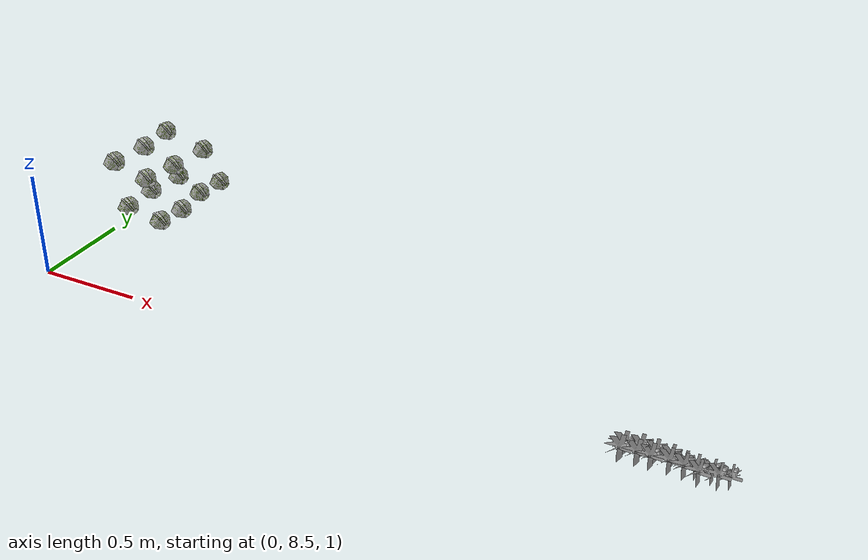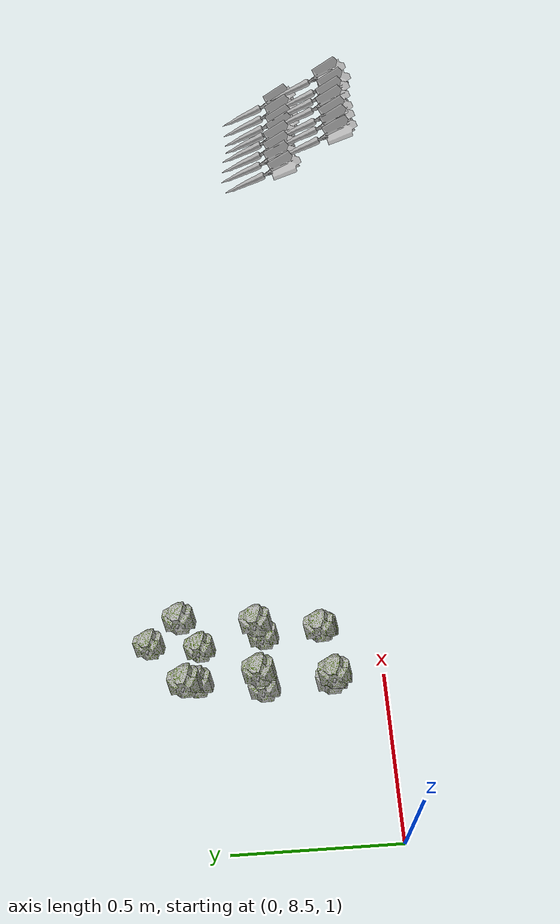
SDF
<sdf version="1.6">
 <world name="default">
  <model name="green_pepper">
   <link name="link_1">
    <inertial>
     <mass>1</mass>
     <inertia>
      <ixx>0.166667</ixx>
      <ixy>0</ixy>
      <ixz>0</ixz>
      <iyy>0.166667</iyy>
      <iyz>0</iyz>
      <izz>0.166667</izz>
     </inertia>
    </inertial>
    <visual name="visual">
     <geometry><mesh><uri>model://green_pepper/meshes/green_pepper.dae</uri><scale>1 1 1</scale></mesh></geometry>
    </visual>
    <collision name="collision">
     <geometry><mesh><uri>model://green_pepper/meshes/green_pepper.dae</uri><scale>1 1 1</scale></mesh></geometry>
     <surface>
      <friction>
       <ode><mu>1</mu><mu2>1</mu2><fdir1>0 0 0</fdir1><slip1>0</slip1><slip2>0</slip2></ode>
       <torsional>
        <coefficient>1</coefficient>
        <patch_radius>0</patch_radius>
        <surface_radius>0</surface_radius>
        <use_patch_radius>1</use_patch_radius>
        <ode><slip>0</slip></ode>
       </torsional>
      </friction>
      <bounce><restitution_coefficient>0</restitution_coefficient><threshold>1e+06</threshold></bounce>
      <contact>
       <collide_without_contact>0</collide_without_contact>
       <collide_without_contact_bitmask>1</collide_without_contact_bitmask>
       <collide_bitmask>1</collide_bitmask>
       <ode>
        <soft_cfm>0</soft_cfm>
        <soft_erp>0.2</soft_erp>
        <kp>1e+13</kp>
        <kd>1</kd>
        <max_vel>0.01</max_vel>
        <min_depth>0</min_depth>
       </ode>
       <bullet>
        <split_impulse>1</split_impulse>
        <split_impulse_penetration_threshold>-0.01</split_impulse_penetration_threshold>
        <soft_cfm>0</soft_cfm>
        <soft_erp>0.2</soft_erp>
        <kp>1e+13</kp>
        <kd>1</kd>
       </bullet>
      </contact>
     </surface>
    </collision>
   </link>
   <static>1</static>
   <pose>0.319036 8.70387 1.55895 0.445743 -0 1.72802</pose>
  </model>
  <model name="green_pepper_clone">
   <link name="link_1">
    <inertial>
     <mass>1</mass>
     <inertia>
      <ixx>0.166667</ixx>
      <ixy>0</ixy>
      <ixz>0</ixz>
      <iyy>0.166667</iyy>
      <iyz>0</iyz>
      <izz>0.166667</izz>
     </inertia>
    </inertial>
    <visual name="visual">
     <geometry><mesh><uri>model://green_pepper/meshes/green_pepper.dae</uri><scale>1 1 1</scale></mesh></geometry>
    </visual>
    <collision name="collision">
     <geometry><mesh><uri>model://green_pepper/meshes/green_pepper.dae</uri><scale>1 1 1</scale></mesh></geometry>
     <surface>
      <friction>
       <ode><mu>1</mu><mu2>1</mu2><fdir1>0 0 0</fdir1><slip1>0</slip1><slip2>0</slip2></ode>
       <torsional>
        <coefficient>1</coefficient>
        <patch_radius>0</patch_radius>
        <surface_radius>0</surface_radius>
        <use_patch_radius>1</use_patch_radius>
        <ode><slip>0</slip></ode>
       </torsional>
      </friction>
      <bounce><restitution_coefficient>0</restitution_coefficient><threshold>1e+06</threshold></bounce>
      <contact>
       <collide_without_contact>0</collide_without_contact>
       <collide_without_contact_bitmask>1</collide_without_contact_bitmask>
       <collide_bitmask>1</collide_bitmask>
       <ode>
        <soft_cfm>0</soft_cfm>
        <soft_erp>0.2</soft_erp>
        <kp>1e+13</kp>
        <kd>1</kd>
        <max_vel>0.01</max_vel>
        <min_depth>0</min_depth>
       </ode>
       <bullet>
        <split_impulse>1</split_impulse>
        <split_impulse_penetration_threshold>-0.01</split_impulse_penetration_threshold>
        <soft_cfm>0</soft_cfm>
        <soft_erp>0.2</soft_erp>
        <kp>1e+13</kp>
        <kd>1</kd>
       </bullet>
      </contact>
     </surface>
    </collision>
   </link>
   <static>1</static>
   <pose>0.336095 8.90108 1.55895 0.445743 -0 1.72802</pose>
  </model>
  <model name="green_pepper_clone_0">
   <link name="link_1">
    <inertial>
     <mass>1</mass>
     <inertia>
      <ixx>0.166667</ixx>
      <ixy>0</ixy>
      <ixz>0</ixz>
      <iyy>0.166667</iyy>
      <iyz>0</iyz>
      <izz>0.166667</izz>
     </inertia>
    </inertial>
    <visual name="visual">
     <geometry><mesh><uri>model://green_pepper/meshes/green_pepper.dae</uri><scale>1 1 1</scale></mesh></geometry>
    </visual>
    <collision name="collision">
     <geometry><mesh><uri>model://green_pepper/meshes/green_pepper.dae</uri><scale>1 1 1</scale></mesh></geometry>
     <surface>
      <friction>
       <ode><mu>1</mu><mu2>1</mu2><fdir1>0 0 0</fdir1><slip1>0</slip1><slip2>0</slip2></ode>
       <torsional>
        <coefficient>1</coefficient>
        <patch_radius>0</patch_radius>
        <surface_radius>0</surface_radius>
        <use_patch_radius>1</use_patch_radius>
        <ode><slip>0</slip></ode>
       </torsional>
      </friction>
      <bounce><restitution_coefficient>0</restitution_coefficient><threshold>1e+06</threshold></bounce>
      <contact>
       <collide_without_contact>0</collide_without_contact>
       <collide_without_contact_bitmask>1</collide_without_contact_bitmask>
       <collide_bitmask>1</collide_bitmask>
       <ode>
        <soft_cfm>0</soft_cfm>
        <soft_erp>0.2</soft_erp>
        <kp>1e+13</kp>
        <kd>1</kd>
        <max_vel>0.01</max_vel>
        <min_depth>0</min_depth>
       </ode>
       <bullet>
        <split_impulse>1</split_impulse>
        <split_impulse_penetration_threshold>-0.01</split_impulse_penetration_threshold>
        <soft_cfm>0</soft_cfm>
        <soft_erp>0.2</soft_erp>
        <kp>1e+13</kp>
        <kd>1</kd>
       </bullet>
      </contact>
     </surface>
    </collision>
   </link>
   <static>1</static>
   <pose>0.319192 9.09518 1.55895 0.445743 -0 1.72802</pose>
  </model>
  <model name="green_pepper_clone_4">
   <link name="link_1">
    <inertial>
     <mass>1</mass>
     <inertia>
      <ixx>0.166667</ixx>
      <ixy>0</ixy>
      <ixz>0</ixz>
      <iyy>0.166667</iyy>
      <iyz>0</iyz>
      <izz>0.166667</izz>
     </inertia>
    </inertial>
    <visual name="visual">
     <geometry><mesh><uri>model://green_pepper/meshes/green_pepper.dae</uri><scale>1 1 1</scale></mesh></geometry>
    </visual>
    <collision name="collision">
     <geometry><mesh><uri>model://green_pepper/meshes/green_pepper.dae</uri><scale>1 1 1</scale></mesh></geometry>
     <surface>
      <friction>
       <ode><mu>1</mu><mu2>1</mu2><fdir1>0 0 0</fdir1><slip1>0</slip1><slip2>0</slip2></ode>
       <torsional>
        <coefficient>1</coefficient>
        <patch_radius>0</patch_radius>
        <surface_radius>0</surface_radius>
        <use_patch_radius>1</use_patch_radius>
        <ode><slip>0</slip></ode>
       </torsional>
      </friction>
      <bounce><restitution_coefficient>0</restitution_coefficient><threshold>1e+06</threshold></bounce>
      <contact>
       <collide_without_contact>0</collide_without_contact>
       <collide_without_contact_bitmask>1</collide_without_contact_bitmask>
       <collide_bitmask>1</collide_bitmask>
       <ode>
        <soft_cfm>0</soft_cfm>
        <soft_erp>0.2</soft_erp>
        <kp>1e+13</kp>
        <kd>1</kd>
        <max_vel>0.01</max_vel>
        <min_depth>0</min_depth>
       </ode>
       <bullet>
        <split_impulse>1</split_impulse>
        <split_impulse_penetration_threshold>-0.01</split_impulse_penetration_threshold>
        <soft_cfm>0</soft_cfm>
        <soft_erp>0.2</soft_erp>
        <kp>1e+13</kp>
        <kd>1</kd>
       </bullet>
      </contact>
     </surface>
    </collision>
   </link>
   <static>1</static>
   <pose>0.47032 8.72776 1.498 0.445743 -0 1.72802</pose>
  </model>
  <model name="green_pepper_clone_4_clone">
   <link name="link_1">
    <inertial>
     <mass>1</mass>
     <inertia>
      <ixx>0.166667</ixx>
      <ixy>0</ixy>
      <ixz>0</ixz>
      <iyy>0.166667</iyy>
      <iyz>0</iyz>
      <izz>0.166667</izz>
     </inertia>
    </inertial>
    <visual name="visual">
     <geometry><mesh><uri>model://green_pepper/meshes/green_pepper.dae</uri><scale>1 1 1</scale></mesh></geometry>
    </visual>
    <collision name="collision">
     <geometry><mesh><uri>model://green_pepper/meshes/green_pepper.dae</uri><scale>1 1 1</scale></mesh></geometry>
     <surface>
      <friction>
       <ode><mu>1</mu><mu2>1</mu2><fdir1>0 0 0</fdir1><slip1>0</slip1><slip2>0</slip2></ode>
       <torsional>
        <coefficient>1</coefficient>
        <patch_radius>0</patch_radius>
        <surface_radius>0</surface_radius>
        <use_patch_radius>1</use_patch_radius>
        <ode><slip>0</slip></ode>
       </torsional>
      </friction>
      <bounce><restitution_coefficient>0</restitution_coefficient><threshold>1e+06</threshold></bounce>
      <contact>
       <collide_without_contact>0</collide_without_contact>
       <collide_without_contact_bitmask>1</collide_without_contact_bitmask>
       <collide_bitmask>1</collide_bitmask>
       <ode>
        <soft_cfm>0</soft_cfm>
        <soft_erp>0.2</soft_erp>
        <kp>1e+13</kp>
        <kd>1</kd>
        <max_vel>0.01</max_vel>
        <min_depth>0</min_depth>
       </ode>
       <bullet>
        <split_impulse>1</split_impulse>
        <split_impulse_penetration_threshold>-0.01</split_impulse_penetration_threshold>
        <soft_cfm>0</soft_cfm>
        <soft_erp>0.2</soft_erp>
        <kp>1e+13</kp>
        <kd>1</kd>
       </bullet>
      </contact>
     </surface>
    </collision>
   </link>
   <static>1</static>
   <pose>0.496707 8.90159 1.498 0.445743 -0 1.72802</pose>
  </model>
  <model name="green_pepper_clone_4_clone_0">
   <link name="link_1">
    <inertial>
     <mass>1</mass>
     <inertia>
      <ixx>0.166667</ixx>
      <ixy>0</ixy>
      <ixz>0</ixz>
      <iyy>0.166667</iyy>
      <iyz>0</iyz>
      <izz>0.166667</izz>
     </inertia>
    </inertial>
    <visual name="visual">
     <geometry><mesh><uri>model://green_pepper/meshes/green_pepper.dae</uri><scale>1 1 1</scale></mesh></geometry>
    </visual>
    <collision name="collision">
     <geometry><mesh><uri>model://green_pepper/meshes/green_pepper.dae</uri><scale>1 1 1</scale></mesh></geometry>
     <surface>
      <friction>
       <ode><mu>1</mu><mu2>1</mu2><fdir1>0 0 0</fdir1><slip1>0</slip1><slip2>0</slip2></ode>
       <torsional>
        <coefficient>1</coefficient>
        <patch_radius>0</patch_radius>
        <surface_radius>0</surface_radius>
        <use_patch_radius>1</use_patch_radius>
        <ode><slip>0</slip></ode>
       </torsional>
      </friction>
      <bounce><restitution_coefficient>0</restitution_coefficient><threshold>1e+06</threshold></bounce>
      <contact>
       <collide_without_contact>0</collide_without_contact>
       <collide_without_contact_bitmask>1</collide_without_contact_bitmask>
       <collide_bitmask>1</collide_bitmask>
       <ode>
        <soft_cfm>0</soft_cfm>
        <soft_erp>0.2</soft_erp>
        <kp>1e+13</kp>
        <kd>1</kd>
        <max_vel>0.01</max_vel>
        <min_depth>0</min_depth>
       </ode>
       <bullet>
        <split_impulse>1</split_impulse>
        <split_impulse_penetration_threshold>-0.01</split_impulse_penetration_threshold>
        <soft_cfm>0</soft_cfm>
        <soft_erp>0.2</soft_erp>
        <kp>1e+13</kp>
        <kd>1</kd>
       </bullet>
      </contact>
     </surface>
    </collision>
   </link>
   <static>1</static>
   <pose>0.51574 9.10967 1.498 0.445743 -0 1.72802</pose>
  </model>
  <model name="green_pepper_clone_4_clone_4">
   <link name="link_1">
    <inertial>
     <mass>1</mass>
     <inertia>
      <ixx>0.166667</ixx>
      <ixy>0</ixy>
      <ixz>0</ixz>
      <iyy>0.166667</iyy>
      <iyz>0</iyz>
      <izz>0.166667</izz>
     </inertia>
    </inertial>
    <visual name="visual">
     <geometry><mesh><uri>model://green_pepper/meshes/green_pepper.dae</uri><scale>1 1 1</scale></mesh></geometry>
    </visual>
    <collision name="collision">
     <geometry><mesh><uri>model://green_pepper/meshes/green_pepper.dae</uri><scale>1 1 1</scale></mesh></geometry>
     <surface>
      <friction>
       <ode><mu>1</mu><mu2>1</mu2><fdir1>0 0 0</fdir1><slip1>0</slip1><slip2>0</slip2></ode>
       <torsional>
        <coefficient>1</coefficient>
        <patch_radius>0</patch_radius>
        <surface_radius>0</surface_radius>
        <use_patch_radius>1</use_patch_radius>
        <ode><slip>0</slip></ode>
       </torsional>
      </friction>
      <bounce><restitution_coefficient>0</restitution_coefficient><threshold>1e+06</threshold></bounce>
      <contact>
       <collide_without_contact>0</collide_without_contact>
       <collide_without_contact_bitmask>1</collide_without_contact_bitmask>
       <collide_bitmask>1</collide_bitmask>
       <ode>
        <soft_cfm>0</soft_cfm>
        <soft_erp>0.2</soft_erp>
        <kp>1e+13</kp>
        <kd>1</kd>
        <max_vel>0.01</max_vel>
        <min_depth>0</min_depth>
       </ode>
       <bullet>
        <split_impulse>1</split_impulse>
        <split_impulse_penetration_threshold>-0.01</split_impulse_penetration_threshold>
        <soft_cfm>0</soft_cfm>
        <soft_erp>0.2</soft_erp>
        <kp>1e+13</kp>
        <kd>1</kd>
       </bullet>
      </contact>
     </surface>
    </collision>
   </link>
   <static>1</static>
   <pose>0.374278 8.69791 1.34771 0.445743 -0 1.72802</pose>
  </model>
  <model name="green_pepper_clone_4_clone_4_clone">
   <link name="link_1">
    <inertial>
     <mass>1</mass>
     <inertia>
      <ixx>0.166667</ixx>
      <ixy>0</ixy>
      <ixz>0</ixz>
      <iyy>0.166667</iyy>
      <iyz>0</iyz>
      <izz>0.166667</izz>
     </inertia>
    </inertial>
    <visual name="visual">
     <geometry><mesh><uri>model://green_pepper/meshes/green_pepper.dae</uri><scale>1 1 1</scale></mesh></geometry>
    </visual>
    <collision name="collision">
     <geometry><mesh><uri>model://green_pepper/meshes/green_pepper.dae</uri><scale>1 1 1</scale></mesh></geometry>
     <surface>
      <friction>
       <ode><mu>1</mu><mu2>1</mu2><fdir1>0 0 0</fdir1><slip1>0</slip1><slip2>0</slip2></ode>
       <torsional>
        <coefficient>1</coefficient>
        <patch_radius>0</patch_radius>
        <surface_radius>0</surface_radius>
        <use_patch_radius>1</use_patch_radius>
        <ode><slip>0</slip></ode>
       </torsional>
      </friction>
      <bounce><restitution_coefficient>0</restitution_coefficient><threshold>1e+06</threshold></bounce>
      <contact>
       <collide_without_contact>0</collide_without_contact>
       <collide_without_contact_bitmask>1</collide_without_contact_bitmask>
       <collide_bitmask>1</collide_bitmask>
       <ode>
        <soft_cfm>0</soft_cfm>
        <soft_erp>0.2</soft_erp>
        <kp>1e+13</kp>
        <kd>1</kd>
        <max_vel>0.01</max_vel>
        <min_depth>0</min_depth>
       </ode>
       <bullet>
        <split_impulse>1</split_impulse>
        <split_impulse_penetration_threshold>-0.01</split_impulse_penetration_threshold>
        <soft_cfm>0</soft_cfm>
        <soft_erp>0.2</soft_erp>
        <kp>1e+13</kp>
        <kd>1</kd>
       </bullet>
      </contact>
     </surface>
    </collision>
   </link>
   <static>1</static>
   <pose>0.3634 8.88587 1.34771 0.445743 -0 1.72802</pose>
  </model>
  <model name="green_pepper_clone_4_clone_4_clone_0">
   <link name="link_1">
    <inertial>
     <mass>1</mass>
     <inertia>
      <ixx>0.166667</ixx>
      <ixy>0</ixy>
      <ixz>0</ixz>
      <iyy>0.166667</iyy>
      <iyz>0</iyz>
      <izz>0.166667</izz>
     </inertia>
    </inertial>
    <visual name="visual">
     <geometry><mesh><uri>model://green_pepper/meshes/green_pepper.dae</uri><scale>1 1 1</scale></mesh></geometry>
    </visual>
    <collision name="collision">
     <geometry><mesh><uri>model://green_pepper/meshes/green_pepper.dae</uri><scale>1 1 1</scale></mesh></geometry>
     <surface>
      <friction>
       <ode><mu>1</mu><mu2>1</mu2><fdir1>0 0 0</fdir1><slip1>0</slip1><slip2>0</slip2></ode>
       <torsional>
        <coefficient>1</coefficient>
        <patch_radius>0</patch_radius>
        <surface_radius>0</surface_radius>
        <use_patch_radius>1</use_patch_radius>
        <ode><slip>0</slip></ode>
       </torsional>
      </friction>
      <bounce><restitution_coefficient>0</restitution_coefficient><threshold>1e+06</threshold></bounce>
      <contact>
       <collide_without_contact>0</collide_without_contact>
       <collide_without_contact_bitmask>1</collide_without_contact_bitmask>
       <collide_bitmask>1</collide_bitmask>
       <ode>
        <soft_cfm>0</soft_cfm>
        <soft_erp>0.2</soft_erp>
        <kp>1e+13</kp>
        <kd>1</kd>
        <max_vel>0.01</max_vel>
        <min_depth>0</min_depth>
       </ode>
       <bullet>
        <split_impulse>1</split_impulse>
        <split_impulse_penetration_threshold>-0.01</split_impulse_penetration_threshold>
        <soft_cfm>0</soft_cfm>
        <soft_erp>0.2</soft_erp>
        <kp>1e+13</kp>
        <kd>1</kd>
       </bullet>
      </contact>
     </surface>
    </collision>
   </link>
   <static>1</static>
   <pose>0.387027 9.07084 1.34771 0.445743 -0 1.72802</pose>
  </model>
  <model name="green_pepper_clone_4_clone_4_clone_4">
   <link name="link_1">
    <inertial>
     <mass>1</mass>
     <inertia>
      <ixx>0.166667</ixx>
      <ixy>0</ixy>
      <ixz>0</ixz>
      <iyy>0.166667</iyy>
      <iyz>0</iyz>
      <izz>0.166667</izz>
     </inertia>
    </inertial>
    <visual name="visual">
     <geometry><mesh><uri>model://green_pepper/meshes/green_pepper.dae</uri><scale>1 1 1</scale></mesh></geometry>
    </visual>
    <collision name="collision">
     <geometry><mesh><uri>model://green_pepper/meshes/green_pepper.dae</uri><scale>1 1 1</scale></mesh></geometry>
     <surface>
      <friction>
       <ode><mu>1</mu><mu2>1</mu2><fdir1>0 0 0</fdir1><slip1>0</slip1><slip2>0</slip2></ode>
       <torsional>
        <coefficient>1</coefficient>
        <patch_radius>0</patch_radius>
        <surface_radius>0</surface_radius>
        <use_patch_radius>1</use_patch_radius>
        <ode><slip>0</slip></ode>
       </torsional>
      </friction>
      <bounce><restitution_coefficient>0</restitution_coefficient><threshold>1e+06</threshold></bounce>
      <contact>
       <collide_without_contact>0</collide_without_contact>
       <collide_without_contact_bitmask>1</collide_without_contact_bitmask>
       <collide_bitmask>1</collide_bitmask>
       <ode>
        <soft_cfm>0</soft_cfm>
        <soft_erp>0.2</soft_erp>
        <kp>1e+13</kp>
        <kd>1</kd>
        <max_vel>0.01</max_vel>
        <min_depth>0</min_depth>
       </ode>
       <bullet>
        <split_impulse>1</split_impulse>
        <split_impulse_penetration_threshold>-0.01</split_impulse_penetration_threshold>
        <soft_cfm>0</soft_cfm>
        <soft_erp>0.2</soft_erp>
        <kp>1e+13</kp>
        <kd>1</kd>
       </bullet>
      </contact>
     </surface>
    </collision>
   </link>
   <static>1</static>
   <pose>0.543584 8.70597 1.31139 0.445743 -0 1.72802</pose>
  </model>
  <model name="green_pepper_clone_4_clone_4_clone_4_clone">
   <link name="link_1">
    <inertial>
     <mass>1</mass>
     <inertia>
      <ixx>0.166667</ixx>
      <ixy>0</ixy>
      <ixz>0</ixz>
      <iyy>0.166667</iyy>
      <iyz>0</iyz>
      <izz>0.166667</izz>
     </inertia>
    </inertial>
    <visual name="visual">
     <geometry><mesh><uri>model://green_pepper/meshes/green_pepper.dae</uri><scale>1 1 1</scale></mesh></geometry>
    </visual>
    <collision name="collision">
     <geometry><mesh><uri>model://green_pepper/meshes/green_pepper.dae</uri><scale>1 1 1</scale></mesh></geometry>
     <surface>
      <friction>
       <ode><mu>1</mu><mu2>1</mu2><fdir1>0 0 0</fdir1><slip1>0</slip1><slip2>0</slip2></ode>
       <torsional>
        <coefficient>1</coefficient>
        <patch_radius>0</patch_radius>
        <surface_radius>0</surface_radius>
        <use_patch_radius>1</use_patch_radius>
        <ode><slip>0</slip></ode>
       </torsional>
      </friction>
      <bounce><restitution_coefficient>0</restitution_coefficient><threshold>1e+06</threshold></bounce>
      <contact>
       <collide_without_contact>0</collide_without_contact>
       <collide_without_contact_bitmask>1</collide_without_contact_bitmask>
       <collide_bitmask>1</collide_bitmask>
       <ode>
        <soft_cfm>0</soft_cfm>
        <soft_erp>0.2</soft_erp>
        <kp>1e+13</kp>
        <kd>1</kd>
        <max_vel>0.01</max_vel>
        <min_depth>0</min_depth>
       </ode>
       <bullet>
        <split_impulse>1</split_impulse>
        <split_impulse_penetration_threshold>-0.01</split_impulse_penetration_threshold>
        <soft_cfm>0</soft_cfm>
        <soft_erp>0.2</soft_erp>
        <kp>1e+13</kp>
        <kd>1</kd>
       </bullet>
      </contact>
     </surface>
    </collision>
   </link>
   <static>1</static>
   <pose>0.536013 8.87889 1.29005 0.445743 -0 1.72802</pose>
  </model>
  <model name="green_pepper_clone_4_clone_4_clone_4_clone_0">
   <link name="link_1">
    <inertial>
     <mass>1</mass>
     <inertia>
      <ixx>0.166667</ixx>
      <ixy>0</ixy>
      <ixz>0</ixz>
      <iyy>0.166667</iyy>
      <iyz>0</iyz>
      <izz>0.166667</izz>
     </inertia>
    </inertial>
    <visual name="visual">
     <geometry><mesh><uri>model://green_pepper/meshes/green_pepper.dae</uri><scale>1 1 1</scale></mesh></geometry>
    </visual>
    <collision name="collision">
     <geometry><mesh><uri>model://green_pepper/meshes/green_pepper.dae</uri><scale>1 1 1</scale></mesh></geometry>
     <surface>
      <friction>
       <ode><mu>1</mu><mu2>1</mu2><fdir1>0 0 0</fdir1><slip1>0</slip1><slip2>0</slip2></ode>
       <torsional>
        <coefficient>1</coefficient>
        <patch_radius>0</patch_radius>
        <surface_radius>0</surface_radius>
        <use_patch_radius>1</use_patch_radius>
        <ode><slip>0</slip></ode>
       </torsional>
      </friction>
      <bounce><restitution_coefficient>0</restitution_coefficient><threshold>1e+06</threshold></bounce>
      <contact>
       <collide_without_contact>0</collide_without_contact>
       <collide_without_contact_bitmask>1</collide_without_contact_bitmask>
       <collide_bitmask>1</collide_bitmask>
       <ode>
        <soft_cfm>0</soft_cfm>
        <soft_erp>0.2</soft_erp>
        <kp>1e+13</kp>
        <kd>1</kd>
        <max_vel>0.01</max_vel>
        <min_depth>0</min_depth>
       </ode>
       <bullet>
        <split_impulse>1</split_impulse>
        <split_impulse_penetration_threshold>-0.01</split_impulse_penetration_threshold>
        <soft_cfm>0</soft_cfm>
        <soft_erp>0.2</soft_erp>
        <kp>1e+13</kp>
        <kd>1</kd>
       </bullet>
      </contact>
     </surface>
    </collision>
   </link>
   <static>1</static>
   <pose>0.509729 9.06373 1.29005 0.445743 -0 1.72802</pose>
  </model>
  <model name="green_pepper_clone_4_clone_4_clone_4_clone_1">
   <link name="link_1">
    <inertial>
     <mass>1</mass>
     <inertia>
      <ixx>0.166667</ixx>
      <ixy>0</ixy>
      <ixz>0</ixz>
      <iyy>0.166667</iyy>
      <iyz>0</iyz>
      <izz>0.166667</izz>
     </inertia>
    </inertial>
    <visual name="visual">
     <geometry><mesh><uri>model://green_pepper/meshes/green_pepper.dae</uri><scale>1 1 1</scale></mesh></geometry>
    </visual>
    <collision name="collision">
     <geometry><mesh><uri>model://green_pepper/meshes/green_pepper.dae</uri><scale>1 1 1</scale></mesh></geometry>
     <surface>
      <friction>
       <ode><mu>1</mu><mu2>1</mu2><fdir1>0 0 0</fdir1><slip1>0</slip1><slip2>0</slip2></ode>
       <torsional>
        <coefficient>1</coefficient>
        <patch_radius>0</patch_radius>
        <surface_radius>0</surface_radius>
        <use_patch_radius>1</use_patch_radius>
        <ode><slip>0</slip></ode>
       </torsional>
      </friction>
      <bounce><restitution_coefficient>0</restitution_coefficient><threshold>1e+06</threshold></bounce>
      <contact>
       <collide_without_contact>0</collide_without_contact>
       <collide_without_contact_bitmask>1</collide_without_contact_bitmask>
       <collide_bitmask>1</collide_bitmask>
       <ode>
        <soft_cfm>0</soft_cfm>
        <soft_erp>0.2</soft_erp>
        <kp>1e+13</kp>
        <kd>1</kd>
        <max_vel>0.01</max_vel>
        <min_depth>0</min_depth>
       </ode>
       <bullet>
        <split_impulse>1</split_impulse>
        <split_impulse_penetration_threshold>-0.01</split_impulse_penetration_threshold>
        <soft_cfm>0</soft_cfm>
        <soft_erp>0.2</soft_erp>
        <kp>1e+13</kp>
        <kd>1</kd>
       </bullet>
      </contact>
     </surface>
    </collision>
   </link>
   <static>1</static>
   <pose>0.526547 9.20906 1.29005 0.445743 -0 1.72802</pose>
  </model>
  <model name="carrot">
   <link name="link_0">
    <inertial>
     <mass>1</mass>
     <inertia>
      <ixx>0.166667</ixx>
      <ixy>0</ixy>
      <ixz>0</ixz>
      <iyy>0.166667</iyy>
      <iyz>0</iyz>
      <izz>0.166667</izz>
     </inertia>
    </inertial>
    <visual name="visual">
     <geometry><mesh><uri>model://carrot/meshes/carrot.dae</uri><scale>1 1 1</scale></mesh></geometry>
    </visual>
    <collision name="collision">
     <geometry><mesh><uri>model://carrot/meshes/carrot.dae</uri><scale>1 1 1</scale></mesh></geometry>
     <surface>
      <friction>
       <ode><mu>1</mu><mu2>1</mu2><fdir1>0 0 0</fdir1><slip1>0</slip1><slip2>0</slip2></ode>
       <torsional>
        <coefficient>1</coefficient>
        <patch_radius>0</patch_radius>
        <surface_radius>0</surface_radius>
        <use_patch_radius>1</use_patch_radius>
        <ode><slip>0</slip></ode>
       </torsional>
      </friction>
      <bounce><restitution_coefficient>0</restitution_coefficient><threshold>1e+06</threshold></bounce>
      <contact>
       <collide_without_contact>0</collide_without_contact>
       <collide_without_contact_bitmask>1</collide_without_contact_bitmask>
       <collide_bitmask>1</collide_bitmask>
       <ode>
        <soft_cfm>0</soft_cfm>
        <soft_erp>0.2</soft_erp>
        <kp>1e+13</kp>
        <kd>1</kd>
        <max_vel>0.01</max_vel>
        <min_depth>0</min_depth>
       </ode>
       <bullet>
        <split_impulse>1</split_impulse>
        <split_impulse_penetration_threshold>-0.01</split_impulse_penetration_threshold>
        <soft_cfm>0</soft_cfm>
        <soft_erp>0.2</soft_erp>
        <kp>1e+13</kp>
        <kd>1</kd>
       </bullet>
      </contact>
     </surface>
    </collision>
   </link>
   <static>1</static>
   <pose>3.20089 8.89904 0.750959 1.00813 -0 0</pose>
  </model>
  <model name="carrot_clone">
   <link name="link_0">
    <inertial>
     <mass>1</mass>
     <inertia>
      <ixx>0.166667</ixx>
      <ixy>0</ixy>
      <ixz>0</ixz>
      <iyy>0.166667</iyy>
      <iyz>0</iyz>
      <izz>0.166667</izz>
     </inertia>
    </inertial>
    <visual name="visual">
     <geometry><mesh><uri>model://carrot/meshes/carrot.dae</uri><scale>1 1 1</scale></mesh></geometry>
    </visual>
    <collision name="collision">
     <geometry><mesh><uri>model://carrot/meshes/carrot.dae</uri><scale>1 1 1</scale></mesh></geometry>
     <surface>
      <friction>
       <ode><mu>1</mu><mu2>1</mu2><fdir1>0 0 0</fdir1><slip1>0</slip1><slip2>0</slip2></ode>
       <torsional>
        <coefficient>1</coefficient>
        <patch_radius>0</patch_radius>
        <surface_radius>0</surface_radius>
        <use_patch_radius>1</use_patch_radius>
        <ode><slip>0</slip></ode>
       </torsional>
      </friction>
      <bounce><restitution_coefficient>0</restitution_coefficient><threshold>1e+06</threshold></bounce>
      <contact>
       <collide_without_contact>0</collide_without_contact>
       <collide_without_contact_bitmask>1</collide_without_contact_bitmask>
       <collide_bitmask>1</collide_bitmask>
       <ode>
        <soft_cfm>0</soft_cfm>
        <soft_erp>0.2</soft_erp>
        <kp>1e+13</kp>
        <kd>1</kd>
        <max_vel>0.01</max_vel>
        <min_depth>0</min_depth>
       </ode>
       <bullet>
        <split_impulse>1</split_impulse>
        <split_impulse_penetration_threshold>-0.01</split_impulse_penetration_threshold>
        <soft_cfm>0</soft_cfm>
        <soft_erp>0.2</soft_erp>
        <kp>1e+13</kp>
        <kd>1</kd>
       </bullet>
      </contact>
     </surface>
    </collision>
   </link>
   <static>1</static>
   <pose>3.13308 8.89787 0.750959 1.00813 -0 0</pose>
  </model>
  <model name="carrot_clone_0">
   <link name="link_0">
    <inertial>
     <mass>1</mass>
     <inertia>
      <ixx>0.166667</ixx>
      <ixy>0</ixy>
      <ixz>0</ixz>
      <iyy>0.166667</iyy>
      <iyz>0</iyz>
      <izz>0.166667</izz>
     </inertia>
    </inertial>
    <visual name="visual">
     <geometry><mesh><uri>model://carrot/meshes/carrot.dae</uri><scale>1 1 1</scale></mesh></geometry>
    </visual>
    <collision name="collision">
     <geometry><mesh><uri>model://carrot/meshes/carrot.dae</uri><scale>1 1 1</scale></mesh></geometry>
     <surface>
      <friction>
       <ode><mu>1</mu><mu2>1</mu2><fdir1>0 0 0</fdir1><slip1>0</slip1><slip2>0</slip2></ode>
       <torsional>
        <coefficient>1</coefficient>
        <patch_radius>0</patch_radius>
        <surface_radius>0</surface_radius>
        <use_patch_radius>1</use_patch_radius>
        <ode><slip>0</slip></ode>
       </torsional>
      </friction>
      <bounce><restitution_coefficient>0</restitution_coefficient><threshold>1e+06</threshold></bounce>
      <contact>
       <collide_without_contact>0</collide_without_contact>
       <collide_without_contact_bitmask>1</collide_without_contact_bitmask>
       <collide_bitmask>1</collide_bitmask>
       <ode>
        <soft_cfm>0</soft_cfm>
        <soft_erp>0.2</soft_erp>
        <kp>1e+13</kp>
        <kd>1</kd>
        <max_vel>0.01</max_vel>
        <min_depth>0</min_depth>
       </ode>
       <bullet>
        <split_impulse>1</split_impulse>
        <split_impulse_penetration_threshold>-0.01</split_impulse_penetration_threshold>
        <soft_cfm>0</soft_cfm>
        <soft_erp>0.2</soft_erp>
        <kp>1e+13</kp>
        <kd>1</kd>
       </bullet>
      </contact>
     </surface>
    </collision>
   </link>
   <static>1</static>
   <pose>3.07071 8.89743 0.750959 1.00813 -0 0</pose>
  </model>
  <model name="carrot_clone_1">
   <link name="link_0">
    <inertial>
     <mass>1</mass>
     <inertia>
      <ixx>0.166667</ixx>
      <ixy>0</ixy>
      <ixz>0</ixz>
      <iyy>0.166667</iyy>
      <iyz>0</iyz>
      <izz>0.166667</izz>
     </inertia>
    </inertial>
    <visual name="visual">
     <geometry><mesh><uri>model://carrot/meshes/carrot.dae</uri><scale>1 1 1</scale></mesh></geometry>
    </visual>
    <collision name="collision">
     <geometry><mesh><uri>model://carrot/meshes/carrot.dae</uri><scale>1 1 1</scale></mesh></geometry>
     <surface>
      <friction>
       <ode><mu>1</mu><mu2>1</mu2><fdir1>0 0 0</fdir1><slip1>0</slip1><slip2>0</slip2></ode>
       <torsional>
        <coefficient>1</coefficient>
        <patch_radius>0</patch_radius>
        <surface_radius>0</surface_radius>
        <use_patch_radius>1</use_patch_radius>
        <ode><slip>0</slip></ode>
       </torsional>
      </friction>
      <bounce><restitution_coefficient>0</restitution_coefficient><threshold>1e+06</threshold></bounce>
      <contact>
       <collide_without_contact>0</collide_without_contact>
       <collide_without_contact_bitmask>1</collide_without_contact_bitmask>
       <collide_bitmask>1</collide_bitmask>
       <ode>
        <soft_cfm>0</soft_cfm>
        <soft_erp>0.2</soft_erp>
        <kp>1e+13</kp>
        <kd>1</kd>
        <max_vel>0.01</max_vel>
        <min_depth>0</min_depth>
       </ode>
       <bullet>
        <split_impulse>1</split_impulse>
        <split_impulse_penetration_threshold>-0.01</split_impulse_penetration_threshold>
        <soft_cfm>0</soft_cfm>
        <soft_erp>0.2</soft_erp>
        <kp>1e+13</kp>
        <kd>1</kd>
       </bullet>
      </contact>
     </surface>
    </collision>
   </link>
   <static>1</static>
   <pose>3.02529 8.89692 0.750959 1.00813 -0 0</pose>
  </model>
  <model name="carrot_clone_2">
   <link name="link_0">
    <inertial>
     <mass>1</mass>
     <inertia>
      <ixx>0.166667</ixx>
      <ixy>0</ixy>
      <ixz>0</ixz>
      <iyy>0.166667</iyy>
      <iyz>0</iyz>
      <izz>0.166667</izz>
     </inertia>
    </inertial>
    <visual name="visual">
     <geometry><mesh><uri>model://carrot/meshes/carrot.dae</uri><scale>1 1 1</scale></mesh></geometry>
    </visual>
    <collision name="collision">
     <geometry><mesh><uri>model://carrot/meshes/carrot.dae</uri><scale>1 1 1</scale></mesh></geometry>
     <surface>
      <friction>
       <ode><mu>1</mu><mu2>1</mu2><fdir1>0 0 0</fdir1><slip1>0</slip1><slip2>0</slip2></ode>
       <torsional>
        <coefficient>1</coefficient>
        <patch_radius>0</patch_radius>
        <surface_radius>0</surface_radius>
        <use_patch_radius>1</use_patch_radius>
        <ode><slip>0</slip></ode>
       </torsional>
      </friction>
      <bounce><restitution_coefficient>0</restitution_coefficient><threshold>1e+06</threshold></bounce>
      <contact>
       <collide_without_contact>0</collide_without_contact>
       <collide_without_contact_bitmask>1</collide_without_contact_bitmask>
       <collide_bitmask>1</collide_bitmask>
       <ode>
        <soft_cfm>0</soft_cfm>
        <soft_erp>0.2</soft_erp>
        <kp>1e+13</kp>
        <kd>1</kd>
        <max_vel>0.01</max_vel>
        <min_depth>0</min_depth>
       </ode>
       <bullet>
        <split_impulse>1</split_impulse>
        <split_impulse_penetration_threshold>-0.01</split_impulse_penetration_threshold>
        <soft_cfm>0</soft_cfm>
        <soft_erp>0.2</soft_erp>
        <kp>1e+13</kp>
        <kd>1</kd>
       </bullet>
      </contact>
     </surface>
    </collision>
   </link>
   <static>1</static>
   <pose>2.9701 8.91221 0.750959 1.00813 -0 0</pose>
  </model>
  <model name="carrot_clone_3">
   <link name="link_0">
    <inertial>
     <mass>1</mass>
     <inertia>
      <ixx>0.166667</ixx>
      <ixy>0</ixy>
      <ixz>0</ixz>
      <iyy>0.166667</iyy>
      <iyz>0</iyz>
      <izz>0.166667</izz>
     </inertia>
    </inertial>
    <visual name="visual">
     <geometry><mesh><uri>model://carrot/meshes/carrot.dae</uri><scale>1 1 1</scale></mesh></geometry>
    </visual>
    <collision name="collision">
     <geometry><mesh><uri>model://carrot/meshes/carrot.dae</uri><scale>1 1 1</scale></mesh></geometry>
     <surface>
      <friction>
       <ode><mu>1</mu><mu2>1</mu2><fdir1>0 0 0</fdir1><slip1>0</slip1><slip2>0</slip2></ode>
       <torsional>
        <coefficient>1</coefficient>
        <patch_radius>0</patch_radius>
        <surface_radius>0</surface_radius>
        <use_patch_radius>1</use_patch_radius>
        <ode><slip>0</slip></ode>
       </torsional>
      </friction>
      <bounce><restitution_coefficient>0</restitution_coefficient><threshold>1e+06</threshold></bounce>
      <contact>
       <collide_without_contact>0</collide_without_contact>
       <collide_without_contact_bitmask>1</collide_without_contact_bitmask>
       <collide_bitmask>1</collide_bitmask>
       <ode>
        <soft_cfm>0</soft_cfm>
        <soft_erp>0.2</soft_erp>
        <kp>1e+13</kp>
        <kd>1</kd>
        <max_vel>0.01</max_vel>
        <min_depth>0</min_depth>
       </ode>
       <bullet>
        <split_impulse>1</split_impulse>
        <split_impulse_penetration_threshold>-0.01</split_impulse_penetration_threshold>
        <soft_cfm>0</soft_cfm>
        <soft_erp>0.2</soft_erp>
        <kp>1e+13</kp>
        <kd>1</kd>
       </bullet>
      </contact>
     </surface>
    </collision>
   </link>
   <static>1</static>
   <pose>2.90706 8.91709 0.750959 1.00813 -0 0</pose>
  </model>
  <model name="carrot_clone_4">
   <link name="link_0">
    <inertial>
     <mass>1</mass>
     <inertia>
      <ixx>0.166667</ixx>
      <ixy>0</ixy>
      <ixz>0</ixz>
      <iyy>0.166667</iyy>
      <iyz>0</iyz>
      <izz>0.166667</izz>
     </inertia>
    </inertial>
    <visual name="visual">
     <geometry><mesh><uri>model://carrot/meshes/carrot.dae</uri><scale>1 1 1</scale></mesh></geometry>
    </visual>
    <collision name="collision">
     <geometry><mesh><uri>model://carrot/meshes/carrot.dae</uri><scale>1 1 1</scale></mesh></geometry>
     <surface>
      <friction>
       <ode><mu>1</mu><mu2>1</mu2><fdir1>0 0 0</fdir1><slip1>0</slip1><slip2>0</slip2></ode>
       <torsional>
        <coefficient>1</coefficient>
        <patch_radius>0</patch_radius>
        <surface_radius>0</surface_radius>
        <use_patch_radius>1</use_patch_radius>
        <ode><slip>0</slip></ode>
       </torsional>
      </friction>
      <bounce><restitution_coefficient>0</restitution_coefficient><threshold>1e+06</threshold></bounce>
      <contact>
       <collide_without_contact>0</collide_without_contact>
       <collide_without_contact_bitmask>1</collide_without_contact_bitmask>
       <collide_bitmask>1</collide_bitmask>
       <ode>
        <soft_cfm>0</soft_cfm>
        <soft_erp>0.2</soft_erp>
        <kp>1e+13</kp>
        <kd>1</kd>
        <max_vel>0.01</max_vel>
        <min_depth>0</min_depth>
       </ode>
       <bullet>
        <split_impulse>1</split_impulse>
        <split_impulse_penetration_threshold>-0.01</split_impulse_penetration_threshold>
        <soft_cfm>0</soft_cfm>
        <soft_erp>0.2</soft_erp>
        <kp>1e+13</kp>
        <kd>1</kd>
       </bullet>
      </contact>
     </surface>
    </collision>
   </link>
   <static>1</static>
   <pose>2.84731 8.92006 0.750959 1.00813 -0 0</pose>
  </model>
  <model name="carrot_clone_5">
   <link name="link_0">
    <inertial>
     <mass>1</mass>
     <inertia>
      <ixx>0.166667</ixx>
      <ixy>0</ixy>
      <ixz>0</ixz>
      <iyy>0.166667</iyy>
      <iyz>0</iyz>
      <izz>0.166667</izz>
     </inertia>
    </inertial>
    <visual name="visual">
     <geometry><mesh><uri>model://carrot/meshes/carrot.dae</uri><scale>1 1 1</scale></mesh></geometry>
    </visual>
    <collision name="collision">
     <geometry><mesh><uri>model://carrot/meshes/carrot.dae</uri><scale>1 1 1</scale></mesh></geometry>
     <surface>
      <friction>
       <ode><mu>1</mu><mu2>1</mu2><fdir1>0 0 0</fdir1><slip1>0</slip1><slip2>0</slip2></ode>
       <torsional>
        <coefficient>1</coefficient>
        <patch_radius>0</patch_radius>
        <surface_radius>0</surface_radius>
        <use_patch_radius>1</use_patch_radius>
        <ode><slip>0</slip></ode>
       </torsional>
      </friction>
      <bounce><restitution_coefficient>0</restitution_coefficient><threshold>1e+06</threshold></bounce>
      <contact>
       <collide_without_contact>0</collide_without_contact>
       <collide_without_contact_bitmask>1</collide_without_contact_bitmask>
       <collide_bitmask>1</collide_bitmask>
       <ode>
        <soft_cfm>0</soft_cfm>
        <soft_erp>0.2</soft_erp>
        <kp>1e+13</kp>
        <kd>1</kd>
        <max_vel>0.01</max_vel>
        <min_depth>0</min_depth>
       </ode>
       <bullet>
        <split_impulse>1</split_impulse>
        <split_impulse_penetration_threshold>-0.01</split_impulse_penetration_threshold>
        <soft_cfm>0</soft_cfm>
        <soft_erp>0.2</soft_erp>
        <kp>1e+13</kp>
        <kd>1</kd>
       </bullet>
      </contact>
     </surface>
    </collision>
   </link>
   <static>1</static>
   <pose>2.78367 8.90713 0.750959 1.00813 -0 0</pose>
  </model>
  <model name="carrot_clone_6_clone">
   <link name="link_0">
    <inertial>
     <mass>1</mass>
     <inertia>
      <ixx>0.166667</ixx>
      <ixy>0</ixy>
      <ixz>0</ixz>
      <iyy>0.166667</iyy>
      <iyz>0</iyz>
      <izz>0.166667</izz>
     </inertia>
    </inertial>
    <visual name="visual">
     <geometry><mesh><uri>model://carrot/meshes/carrot.dae</uri><scale>1 1 1</scale></mesh></geometry>
    </visual>
    <collision name="collision">
     <geometry><mesh><uri>model://carrot/meshes/carrot.dae</uri><scale>1 1 1</scale></mesh></geometry>
     <surface>
      <friction>
       <ode><mu>1</mu><mu2>1</mu2><fdir1>0 0 0</fdir1><slip1>0</slip1><slip2>0</slip2></ode>
       <torsional>
        <coefficient>1</coefficient>
        <patch_radius>0</patch_radius>
        <surface_radius>0</surface_radius>
        <use_patch_radius>1</use_patch_radius>
        <ode><slip>0</slip></ode>
       </torsional>
      </friction>
      <bounce><restitution_coefficient>0</restitution_coefficient><threshold>1e+06</threshold></bounce>
      <contact>
       <collide_without_contact>0</collide_without_contact>
       <collide_without_contact_bitmask>1</collide_without_contact_bitmask>
       <collide_bitmask>1</collide_bitmask>
       <ode>
        <soft_cfm>0</soft_cfm>
        <soft_erp>0.2</soft_erp>
        <kp>1e+13</kp>
        <kd>1</kd>
        <max_vel>0.01</max_vel>
        <min_depth>0</min_depth>
       </ode>
       <bullet>
        <split_impulse>1</split_impulse>
        <split_impulse_penetration_threshold>-0.01</split_impulse_penetration_threshold>
        <soft_cfm>0</soft_cfm>
        <soft_erp>0.2</soft_erp>
        <kp>1e+13</kp>
        <kd>1</kd>
       </bullet>
      </contact>
     </surface>
    </collision>
   </link>
   <static>1</static>
   <pose>2.8205 8.67267 0.910543 1.00813 -0 0</pose>
  </model>
  <model name="carrot_clone_6_clone_0">
   <link name="link_0">
    <inertial>
     <mass>1</mass>
     <inertia>
      <ixx>0.166667</ixx>
      <ixy>0</ixy>
      <ixz>0</ixz>
      <iyy>0.166667</iyy>
      <iyz>0</iyz>
      <izz>0.166667</izz>
     </inertia>
    </inertial>
    <visual name="visual">
     <geometry><mesh><uri>model://carrot/meshes/carrot.dae</uri><scale>1 1 1</scale></mesh></geometry>
    </visual>
    <collision name="collision">
     <geometry><mesh><uri>model://carrot/meshes/carrot.dae</uri><scale>1 1 1</scale></mesh></geometry>
     <surface>
      <friction>
       <ode><mu>1</mu><mu2>1</mu2><fdir1>0 0 0</fdir1><slip1>0</slip1><slip2>0</slip2></ode>
       <torsional>
        <coefficient>1</coefficient>
        <patch_radius>0</patch_radius>
        <surface_radius>0</surface_radius>
        <use_patch_radius>1</use_patch_radius>
        <ode><slip>0</slip></ode>
       </torsional>
      </friction>
      <bounce><restitution_coefficient>0</restitution_coefficient><threshold>1e+06</threshold></bounce>
      <contact>
       <collide_without_contact>0</collide_without_contact>
       <collide_without_contact_bitmask>1</collide_without_contact_bitmask>
       <collide_bitmask>1</collide_bitmask>
       <ode>
        <soft_cfm>0</soft_cfm>
        <soft_erp>0.2</soft_erp>
        <kp>1e+13</kp>
        <kd>1</kd>
        <max_vel>0.01</max_vel>
        <min_depth>0</min_depth>
       </ode>
       <bullet>
        <split_impulse>1</split_impulse>
        <split_impulse_penetration_threshold>-0.01</split_impulse_penetration_threshold>
        <soft_cfm>0</soft_cfm>
        <soft_erp>0.2</soft_erp>
        <kp>1e+13</kp>
        <kd>1</kd>
       </bullet>
      </contact>
     </surface>
    </collision>
   </link>
   <static>1</static>
   <pose>2.8839 8.67626 0.910543 1.00813 -0 0</pose>
  </model>
  <model name="carrot_clone_6_clone_1">
   <link name="link_0">
    <inertial>
     <mass>1</mass>
     <inertia>
      <ixx>0.166667</ixx>
      <ixy>0</ixy>
      <ixz>0</ixz>
      <iyy>0.166667</iyy>
      <iyz>0</iyz>
      <izz>0.166667</izz>
     </inertia>
    </inertial>
    <visual name="visual">
     <geometry><mesh><uri>model://carrot/meshes/carrot.dae</uri><scale>1 1 1</scale></mesh></geometry>
    </visual>
    <collision name="collision">
     <geometry><mesh><uri>model://carrot/meshes/carrot.dae</uri><scale>1 1 1</scale></mesh></geometry>
     <surface>
      <friction>
       <ode><mu>1</mu><mu2>1</mu2><fdir1>0 0 0</fdir1><slip1>0</slip1><slip2>0</slip2></ode>
       <torsional>
        <coefficient>1</coefficient>
        <patch_radius>0</patch_radius>
        <surface_radius>0</surface_radius>
        <use_patch_radius>1</use_patch_radius>
        <ode><slip>0</slip></ode>
       </torsional>
      </friction>
      <bounce><restitution_coefficient>0</restitution_coefficient><threshold>1e+06</threshold></bounce>
      <contact>
       <collide_without_contact>0</collide_without_contact>
       <collide_without_contact_bitmask>1</collide_without_contact_bitmask>
       <collide_bitmask>1</collide_bitmask>
       <ode>
        <soft_cfm>0</soft_cfm>
        <soft_erp>0.2</soft_erp>
        <kp>1e+13</kp>
        <kd>1</kd>
        <max_vel>0.01</max_vel>
        <min_depth>0</min_depth>
       </ode>
       <bullet>
        <split_impulse>1</split_impulse>
        <split_impulse_penetration_threshold>-0.01</split_impulse_penetration_threshold>
        <soft_cfm>0</soft_cfm>
        <soft_erp>0.2</soft_erp>
        <kp>1e+13</kp>
        <kd>1</kd>
       </bullet>
      </contact>
     </surface>
    </collision>
   </link>
   <static>1</static>
   <pose>2.93528 8.67824 0.910543 1.00813 -0 0</pose>
  </model>
  <model name="carrot_clone_6_clone_2">
   <link name="link_0">
    <inertial>
     <mass>1</mass>
     <inertia>
      <ixx>0.166667</ixx>
      <ixy>0</ixy>
      <ixz>0</ixz>
      <iyy>0.166667</iyy>
      <iyz>0</iyz>
      <izz>0.166667</izz>
     </inertia>
    </inertial>
    <visual name="visual">
     <geometry><mesh><uri>model://carrot/meshes/carrot.dae</uri><scale>1 1 1</scale></mesh></geometry>
    </visual>
    <collision name="collision">
     <geometry><mesh><uri>model://carrot/meshes/carrot.dae</uri><scale>1 1 1</scale></mesh></geometry>
     <surface>
      <friction>
       <ode><mu>1</mu><mu2>1</mu2><fdir1>0 0 0</fdir1><slip1>0</slip1><slip2>0</slip2></ode>
       <torsional>
        <coefficient>1</coefficient>
        <patch_radius>0</patch_radius>
        <surface_radius>0</surface_radius>
        <use_patch_radius>1</use_patch_radius>
        <ode><slip>0</slip></ode>
       </torsional>
      </friction>
      <bounce><restitution_coefficient>0</restitution_coefficient><threshold>1e+06</threshold></bounce>
      <contact>
       <collide_without_contact>0</collide_without_contact>
       <collide_without_contact_bitmask>1</collide_without_contact_bitmask>
       <collide_bitmask>1</collide_bitmask>
       <ode>
        <soft_cfm>0</soft_cfm>
        <soft_erp>0.2</soft_erp>
        <kp>1e+13</kp>
        <kd>1</kd>
        <max_vel>0.01</max_vel>
        <min_depth>0</min_depth>
       </ode>
       <bullet>
        <split_impulse>1</split_impulse>
        <split_impulse_penetration_threshold>-0.01</split_impulse_penetration_threshold>
        <soft_cfm>0</soft_cfm>
        <soft_erp>0.2</soft_erp>
        <kp>1e+13</kp>
        <kd>1</kd>
       </bullet>
      </contact>
     </surface>
    </collision>
   </link>
   <static>1</static>
   <pose>3.00237 8.68373 0.910543 1.00813 -0 0</pose>
  </model>
  <model name="carrot_clone_6_clone_3">
   <link name="link_0">
    <inertial>
     <mass>1</mass>
     <inertia>
      <ixx>0.166667</ixx>
      <ixy>0</ixy>
      <ixz>0</ixz>
      <iyy>0.166667</iyy>
      <iyz>0</iyz>
      <izz>0.166667</izz>
     </inertia>
    </inertial>
    <visual name="visual">
     <geometry><mesh><uri>model://carrot/meshes/carrot.dae</uri><scale>1 1 1</scale></mesh></geometry>
    </visual>
    <collision name="collision">
     <geometry><mesh><uri>model://carrot/meshes/carrot.dae</uri><scale>1 1 1</scale></mesh></geometry>
     <surface>
      <friction>
       <ode><mu>1</mu><mu2>1</mu2><fdir1>0 0 0</fdir1><slip1>0</slip1><slip2>0</slip2></ode>
       <torsional>
        <coefficient>1</coefficient>
        <patch_radius>0</patch_radius>
        <surface_radius>0</surface_radius>
        <use_patch_radius>1</use_patch_radius>
        <ode><slip>0</slip></ode>
       </torsional>
      </friction>
      <bounce><restitution_coefficient>0</restitution_coefficient><threshold>1e+06</threshold></bounce>
      <contact>
       <collide_without_contact>0</collide_without_contact>
       <collide_without_contact_bitmask>1</collide_without_contact_bitmask>
       <collide_bitmask>1</collide_bitmask>
       <ode>
        <soft_cfm>0</soft_cfm>
        <soft_erp>0.2</soft_erp>
        <kp>1e+13</kp>
        <kd>1</kd>
        <max_vel>0.01</max_vel>
        <min_depth>0</min_depth>
       </ode>
       <bullet>
        <split_impulse>1</split_impulse>
        <split_impulse_penetration_threshold>-0.01</split_impulse_penetration_threshold>
        <soft_cfm>0</soft_cfm>
        <soft_erp>0.2</soft_erp>
        <kp>1e+13</kp>
        <kd>1</kd>
       </bullet>
      </contact>
     </surface>
    </collision>
   </link>
   <static>1</static>
   <pose>3.05748 8.67942 0.910543 1.00813 -0 0</pose>
  </model>
  <model name="carrot_clone_6_clone_4">
   <link name="link_0">
    <inertial>
     <mass>1</mass>
     <inertia>
      <ixx>0.166667</ixx>
      <ixy>0</ixy>
      <ixz>0</ixz>
      <iyy>0.166667</iyy>
      <iyz>0</iyz>
      <izz>0.166667</izz>
     </inertia>
    </inertial>
    <visual name="visual">
     <geometry><mesh><uri>model://carrot/meshes/carrot.dae</uri><scale>1 1 1</scale></mesh></geometry>
    </visual>
    <collision name="collision">
     <geometry><mesh><uri>model://carrot/meshes/carrot.dae</uri><scale>1 1 1</scale></mesh></geometry>
     <surface>
      <friction>
       <ode><mu>1</mu><mu2>1</mu2><fdir1>0 0 0</fdir1><slip1>0</slip1><slip2>0</slip2></ode>
       <torsional>
        <coefficient>1</coefficient>
        <patch_radius>0</patch_radius>
        <surface_radius>0</surface_radius>
        <use_patch_radius>1</use_patch_radius>
        <ode><slip>0</slip></ode>
       </torsional>
      </friction>
      <bounce><restitution_coefficient>0</restitution_coefficient><threshold>1e+06</threshold></bounce>
      <contact>
       <collide_without_contact>0</collide_without_contact>
       <collide_without_contact_bitmask>1</collide_without_contact_bitmask>
       <collide_bitmask>1</collide_bitmask>
       <ode>
        <soft_cfm>0</soft_cfm>
        <soft_erp>0.2</soft_erp>
        <kp>1e+13</kp>
        <kd>1</kd>
        <max_vel>0.01</max_vel>
        <min_depth>0</min_depth>
       </ode>
       <bullet>
        <split_impulse>1</split_impulse>
        <split_impulse_penetration_threshold>-0.01</split_impulse_penetration_threshold>
        <soft_cfm>0</soft_cfm>
        <soft_erp>0.2</soft_erp>
        <kp>1e+13</kp>
        <kd>1</kd>
       </bullet>
      </contact>
     </surface>
    </collision>
   </link>
   <static>1</static>
   <pose>3.11272 8.66893 0.910543 1.00813 -0 0</pose>
  </model>
  <model name="carrot_clone_6_clone_5">
   <link name="link_0">
    <inertial>
     <mass>1</mass>
     <inertia>
      <ixx>0.166667</ixx>
      <ixy>0</ixy>
      <ixz>0</ixz>
      <iyy>0.166667</iyy>
      <iyz>0</iyz>
      <izz>0.166667</izz>
     </inertia>
    </inertial>
    <visual name="visual">
     <geometry><mesh><uri>model://carrot/meshes/carrot.dae</uri><scale>1 1 1</scale></mesh></geometry>
    </visual>
    <collision name="collision">
     <geometry><mesh><uri>model://carrot/meshes/carrot.dae</uri><scale>1 1 1</scale></mesh></geometry>
     <surface>
      <friction>
       <ode><mu>1</mu><mu2>1</mu2><fdir1>0 0 0</fdir1><slip1>0</slip1><slip2>0</slip2></ode>
       <torsional>
        <coefficient>1</coefficient>
        <patch_radius>0</patch_radius>
        <surface_radius>0</surface_radius>
        <use_patch_radius>1</use_patch_radius>
        <ode><slip>0</slip></ode>
       </torsional>
      </friction>
      <bounce><restitution_coefficient>0</restitution_coefficient><threshold>1e+06</threshold></bounce>
      <contact>
       <collide_without_contact>0</collide_without_contact>
       <collide_without_contact_bitmask>1</collide_without_contact_bitmask>
       <collide_bitmask>1</collide_bitmask>
       <ode>
        <soft_cfm>0</soft_cfm>
        <soft_erp>0.2</soft_erp>
        <kp>1e+13</kp>
        <kd>1</kd>
        <max_vel>0.01</max_vel>
        <min_depth>0</min_depth>
       </ode>
       <bullet>
        <split_impulse>1</split_impulse>
        <split_impulse_penetration_threshold>-0.01</split_impulse_penetration_threshold>
        <soft_cfm>0</soft_cfm>
        <soft_erp>0.2</soft_erp>
        <kp>1e+13</kp>
        <kd>1</kd>
       </bullet>
      </contact>
     </surface>
    </collision>
   </link>
   <static>1</static>
   <pose>3.18125 8.68458 0.910543 1.00813 -0 0</pose>
  </model>
 </world>
</sdf>
